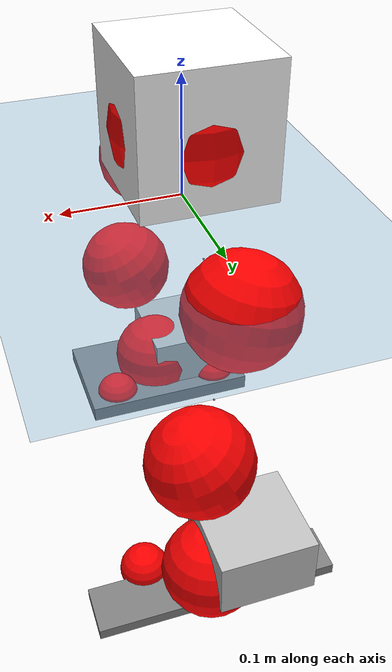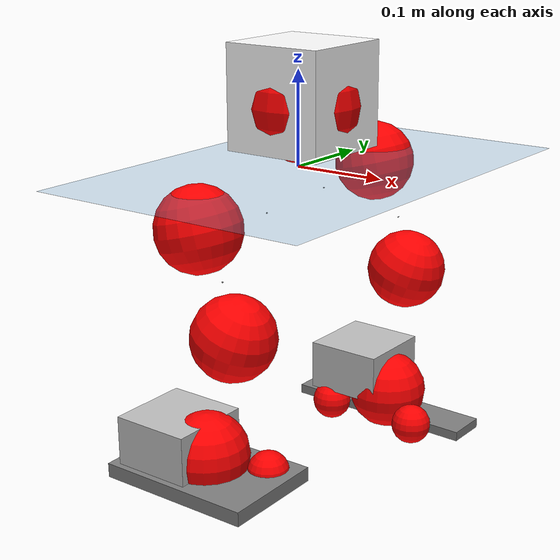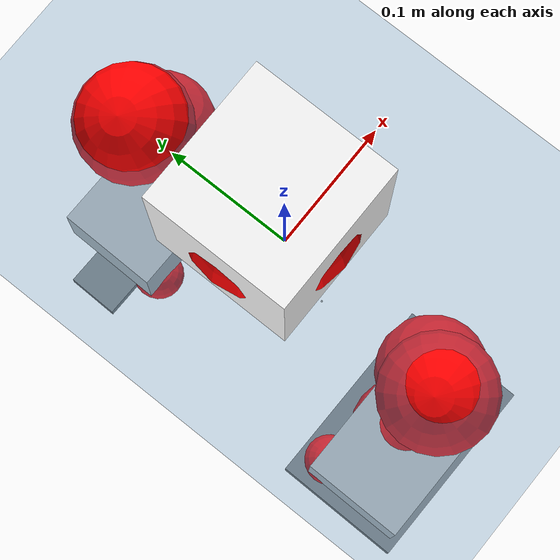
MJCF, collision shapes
<mujoco model="pi_12dof_release_v1">
  <compiler angle="radian" assetdir="assets" balanceinertia="true" inertiafromgeom="false"/>

  <option timestep="0.005" density="1.2" viscosity="2e-05"/>

  <size nkey="1"/>

  <visual>
    <quality shadowsize="8192"/>
    <map shadowclip="0.5"/>
  </visual>

  <default>
    <default class="/">
      <joint armature="0.01" damping="0.01" frictionloss="0.01"/>
      <geom contype="0" conaffinity="0" group="1" solref="-1000 -80"/>
      <site size="0.01 0.005 0.005" group="5"/>
      <general forcelimited="true" biastype="affine" gainprm="20" biasprm="0 -20 -0.5"/>
      <default class="foot">
        <geom size="0.0845 0.036 0.005" type="box" condim="6" group="4" priority="1" friction="0.9 0.2 0.2" solimp="0.015 1 0.005"/>
      </default>
      <default class="reward_collision_sphere">
        <geom group="5" rgba="1 0 0 1"/>
      </default>
    </default>
  </default>

  <asset>
    <texture type="skybox" colorspace="auto" name="//unnamed_texture_0" builtin="gradient" rgb1="0.95 0.95 0.95" rgb2="0.95 0.95 0.95" width="100" height="600"/>
    <texture type="2d" colorspace="auto" name="texplane" builtin="checker" rgb1="0.345 0.575 0.748" rgb2="0.345 0.575 0.748" markrgb="1 1 1" width="512" height="512"/>
    <material name="MatPlane" class="/" texture="texplane" texuniform="true" texrepeat="2 2" specular="0.9"/>
    <mesh name="baselink_1" class="/" file="baselink_1.STL"/>
    <mesh name="r_hip_pitch_link" class="/" file="r_hip_pitch_link.STL"/>
    <mesh name="r_hip_roll_link" class="/" file="r_hip_roll_link.STL"/>
    <mesh name="r_thigh_link" class="/" file="r_thigh_link.STL"/>
    <mesh name="r_calf_link" class="/" file="r_calf_link.STL"/>
    <mesh name="r_ankle_pitch_link" class="/" file="r_ankle_pitch_link.STL"/>
    <mesh name="r_ankle_roll_link" class="/" file="r_ankle_roll_link.STL"/>
    <mesh name="l_hip_pitch_link" class="/" file="l_hip_pitch_link.STL"/>
    <mesh name="l_hip_roll_link" class="/" file="l_hip_roll_link.STL"/>
    <mesh name="l_thigh_link" class="/" file="l_thigh_link.STL"/>
    <mesh name="l_calf_link" class="/" file="l_calf_link.STL"/>
    <mesh name="l_ankle_pitch_link" class="/" file="l_ankle_pitch_link.STL"/>
    <mesh name="l_ankle_roll_link" class="/" file="l_ankle_roll_link.STL"/>
  </asset>

  <worldbody>
    <geom name="floor" class="/" size="100 100 0.125" type="plane" group="0" material="MatPlane"/>
    <light name="toplight_shadow" class="/" pos="0 0 5" dir="0.0990148 0.0990148 -0.990148" type="directional" ambient="0.04 0.04 0.04" diffuse="0.55 0.55 0.55" specular="0.12 0.12 0.12"/>
    <light name="toplight_fill" class="/" pos="0 0 5" dir="0.0990148 0.0990148 -0.990148" type="directional" castshadow="false" ambient="0.04 0.04 0.04" diffuse="0.3 0.3 0.3" specular="0.08 0.08 0.08"/>
    <body name="trunk" pos="-0.00127457 0.00994474 -0.000463248" quat="1 3.14448e-05 0.000191285 3.4265e-05">
      <inertial pos="-0.00179737 0.0105782 0.0368023" quat="0.672033 0.0727672 -0.012606 0.736829" mass="2.94327" diaginertia="0.00397237 0.095442 0.00256891"/>
      <joint name="//unnamed_joint_0" type="free"/>
      <geom name="//unnamed_geom_1" class="/" type="mesh" density="0" rgba="1 1 1 1" mesh="baselink_1"/>
      <geom name="//unnamed_geom_2" class="/" size="0.0551156 0.0551156 0.0551156" pos="0 0 0.0726496" type="box" rgba="1 1 1 1"/>
      <geom name="//unnamed_geom_3" class="reward_collision_sphere" size="0.0606272" pos="0 0 0.0635684"/>
      <site name="imu" class="/" pos="-0.0480428 -0.0361698 0.049645" size="0.0110231"/>
      <camera name="track" class="/" pos="0 -3.15836 0" quat="0.707107 0.707107 0 0" mode="trackcom"/>
      <camera name="ego_camera" class="/" pos="0.0614727 0 0.163462" quat="-0.5 -0.5 0.5 0.5"/>
      <body name="r_hip_pitch_link" pos="-0.00863732 -0.0509329 -0.0418353" quat="0.991675 0.00134105 -0.128725 -0.00291963">
        <inertial pos="0.0024835 -0.0899574 -0.00662313" quat="-0.016487 0.705239 -0.0308435 0.708106" mass="0.550884" diaginertia="3.96331e-05 0.00105469 4.95516e-05"/>
        <joint name="r_hip_pitch_joint" class="/" pos="0 0 0" axis="0.0233663 -0.999701 0.00721749" stiffness="0.00313184" range="-1.72004 1.38995" armature="0.0115401" damping="0.0253809" frictionloss="0.0127025"/>
        <geom name="//unnamed_geom_4" class="/" type="mesh" density="0" rgba="0.75294 0.75294 0.75294 1" mesh="r_hip_pitch_link"/>
        <geom name="//unnamed_geom_5" class="/" size="0.000551156 0.000551156 0.000551156" type="box" rgba="0.75294 0.75294 0.75294 1"/>
        <body name="r_hip_roll_link" pos="0.000765904 -0.10392 0.0065442" quat="0.99999 0.00323005 0.00307375 0.000659522">
          <inertial pos="-0.0104458 -0.00728104 -0.0594084" quat="0.725261 -0.029655 -0.0687942 0.684386" mass="0.519377" diaginertia="0.000123105 0.00277087 8.34335e-05"/>
          <joint name="r_hip_roll_joint" class="/" pos="0 0 0" axis="-0.999138 -0.0382057 0.0162344" stiffness="0.00689631" range="-0.136208 0.28402" armature="0.0160637" damping="0.0922938" frictionloss="0.0110264"/>
          <geom name="//unnamed_geom_6" class="/" type="mesh" density="0" rgba="0.75294 0.75294 0.75294 1" mesh="r_hip_roll_link"/>
          <geom name="//unnamed_geom_7" class="/" size="0.000551156 0.000551156 0.000551156" type="box" rgba="0.75294 0.75294 0.75294 1"/>
          <geom name="//unnamed_geom_8" class="reward_collision_sphere" size="0.0440925"/>
          <body name="r_thigh_link" pos="0.00383568 0.0124475 -0.0559746" quat="0.999994 0.00207068 0.0025095 -0.000893586">
            <inertial pos="-0.00821794 0.00188137 -0.0294671" quat="0.739101 0.67357 -0.00573174 0.000252517" mass="0.155431" diaginertia="5.26703e-05 0.000791449 4.2374e-05"/>
            <joint name="r_thigh_joint" class="/" pos="0 0 0" axis="0.00999644 0.00295438 -0.999946" stiffness="0.0369862" range="-0.123756 0.590456" armature="0.0140759" damping="0.00302611" frictionloss="0.0116698"/>
            <geom name="//unnamed_geom_9" class="/" type="mesh" density="0" rgba="0.75294 0.75294 0.75294 1" mesh="r_thigh_link"/>
            <geom name="//unnamed_geom_10" class="/" size="0.000551156 0.000551156 0.000551156" type="box" rgba="0.75294 0.75294 0.75294 1"/>
            <body name="r_calf_link" pos="-0.00343749 0.00194069 -0.0572106" quat="0.947531 4.45169e-05 0.319661 -0.000900255">
              <inertial pos="0.00441617 -0.00450358 -0.0661673" quat="0.999986 -0.00291258 0.000497159 0.00437696" mass="1.24091" diaginertia="0.00135995 0.0404516 9.35141e-05"/>
              <joint name="r_calf_joint" class="/" pos="0 0 0" axis="-0.00434247 -0.999356 0.0356173" stiffness="0.0315406" range="-1.93939 0.514136" armature="0.0127563" damping="0.0150855" frictionloss="0.00749585"/>
              <geom name="//unnamed_geom_11" class="/" type="mesh" density="0" rgba="0.75294 0.75294 0.75294 1" mesh="r_calf_link"/>
              <geom name="//unnamed_geom_12" class="/" size="0.000551156 0.000551156 0.000551156" type="box" rgba="0.75294 0.75294 0.75294 1"/>
              <geom name="//unnamed_geom_13" class="reward_collision_sphere" size="0.0440925"/>
              <body name="r_ankle_pitch_link" pos="-0.0128208 -0.0139548 -0.134575" quat="0.98051 0.00196814 -0.196455 -0.00107301">
                <inertial pos="0.010171 0.0194993 -0.000180998" quat="-0.028853 0.708202 -0.0244943 0.704995" mass="0.18089" diaginertia="9.8156e-05 0.00189847 6.80175e-05"/>
                <joint name="r_ankle_pitch_joint" class="/" pos="0 0 0" axis="0.00804347 -0.997951 0.0634738" range="-1.42221 0.248444" armature="0.0111198" damping="0" frictionloss="0.0136348"/>
                <geom name="//unnamed_geom_14" class="/" type="mesh" density="0" rgba="0.75294 0.75294 0.75294 1" mesh="r_ankle_pitch_link"/>
                <geom name="//unnamed_geom_15" class="/" size="0.0429902 0.0440925 0.0275578" type="box" rgba="0.75294 0.75294 0.75294 1"/>
                <body name="r_ankle_roll_link" pos="0.0746329 0.00441354 0.00829343" quat="0.999984 0.0049463 -0.00252761 -0.000964897">
                  <inertial pos="-0.0243416 0.00220699 -0.0218796" quat="0.57625 0.431973 0.399604 0.567144" mass="0.690042" diaginertia="0.0004039 0.0102599 0.00016582"/>
                  <joint name="r_ankle_roll_joint" class="/" pos="0 0 0" axis="-0.999994 0.00253855 -0.00242147" range="0.119574 0.176143" armature="0.0117394" damping="0.0166762" frictionloss="0.0146533"/>
                  <geom name="//unnamed_geom_16" class="/" type="mesh" density="0" rgba="0.75294 0.75294 0.75294 1" mesh="r_ankle_roll_link"/>
                  <geom name="//unnamed_geom_17" class="/" type="mesh" rgba="0.75294 0.75294 0.75294 1" mesh="r_ankle_roll_link"/>
                  <geom name="right_foot" class="foot" size="0.0861745 0.0557761 0.00767781" pos="-0.0418014 0 -0.0399573"/>
                  <geom name="//unnamed_geom_19" class="reward_collision_sphere" size="0.0440925" pos="-0.0409818 0 -0.0181624"/>
                  <geom name="//unnamed_geom_20" class="reward_collision_sphere" size="0.0220462" pos="0.0122945 0.0315836 -0.0363248"/>
                  <geom name="//unnamed_geom_21" class="reward_collision_sphere" size="0.0220462" pos="-0.0983563 0.0315836 -0.0363248"/>
                  <site name="right_foot" class="foot" pos="-0.0418014 0 -0.0399573" size="0.0110231"/>
                </body>
              </body>
            </body>
          </body>
        </body>
      </body>
      <body name="l_hip_pitch_link" pos="-0.000522435 0.0382193 -0.0319716" quat="0.992273 -0.00151307 -0.124057 -0.00147965">
        <inertial pos="0.00226255 0.0965813 -0.00721968" quat="-0.0273024 0.714538 0.0216039 0.698729" mass="0.463969" diaginertia="4.49154e-05 0.000966886 5.70703e-05"/>
        <joint name="l_hip_pitch_joint" class="/" pos="0 0 0" axis="-0.00893194 0.999905 0.0104689" range="-1.22833 1.74437" armature="0.0113695" damping="0.056845" frictionloss="0.00631757"/>
        <geom name="//unnamed_geom_22" class="/" type="mesh" density="0" rgba="0.75294 0.75294 0.75294 1" mesh="l_hip_pitch_link"/>
        <geom name="//unnamed_geom_23" class="/" size="0.000551156 0.000551156 0.000551156" type="box" rgba="0.75294 0.75294 0.75294 1"/>
        <body name="l_hip_roll_link" pos="0.00790268 0.0907849 0.0128145" quat="0.999999 0.000242138 -0.000313644 -0.00122623">
          <inertial pos="0.000915202 0.000941368 -0.0422881" quat="0.70708 -0.0606455 -0.0451202 0.703082" mass="0.40137" diaginertia="0.000120617 0.00238968 7.50503e-05"/>
          <joint name="l_hip_roll_joint" class="/" pos="0 0 0" axis="-0.998692 0.0310774 -0.0405975" stiffness="0.00929434" range="-0.244496 0.0836156" armature="0.0051727" damping="0.000513952" frictionloss="0.00837007"/>
          <geom name="//unnamed_geom_24" class="/" type="mesh" density="0" rgba="0.75294 0.75294 0.75294 1" mesh="l_hip_roll_link"/>
          <geom name="//unnamed_geom_25" class="/" size="0.000551156 0.000551156 0.000551156" type="box" rgba="0.75294 0.75294 0.75294 1"/>
          <geom name="//unnamed_geom_26" class="reward_collision_sphere" size="0.0440925"/>
          <body name="l_thigh_link" pos="0.00753423 0.0142513 -0.0687249" quat="0.999999 0.00126515 -0.000592983 -0.000464522">
            <inertial pos="0.000789812 -0.00241954 -0.0419857" quat="0.675077 0.737746 -0.000476183 0.000955323" mass="0.1232" diaginertia="3.58249e-05 0.00083847 3.27148e-05"/>
            <joint name="l_thigh_joint" class="/" pos="0 0 0" axis="0.00461501 -0.00108179 -0.999989" stiffness="0.00292908" range="-0.630559 0.311772" armature="0.0152331" damping="0" frictionloss="0.0104561"/>
            <geom name="//unnamed_geom_27" class="/" type="mesh" density="0" rgba="0.75294 0.75294 0.75294 1" mesh="l_thigh_link"/>
            <geom name="//unnamed_geom_28" class="/" size="0.000551156 0.000551156 0.000551156" type="box" rgba="0.75294 0.75294 0.75294 1"/>
            <body name="l_calf_link" pos="-0.00424041 0.00215223 -0.0605216" quat="0.94678 0.00274594 0.321842 -0.0041259">
              <inertial pos="-0.00309547 -0.00498604 -0.0549881" quat="0.999927 -0.0117171 0.00155967 0.00234589" mass="0.995187" diaginertia="0.00104084 0.0293518 8.27282e-05"/>
              <joint name="l_calf_joint" class="/" pos="0 0 0" axis="-0.0265544 0.999133 0.0320718" stiffness="0.0215141" range="-0.705609 1.75647" armature="0.00921332" damping="0" frictionloss="0.00854458"/>
              <geom name="//unnamed_geom_29" class="/" type="mesh" density="0" rgba="0.75294 0.75294 0.75294 1" mesh="l_calf_link"/>
              <geom name="//unnamed_geom_30" class="/" size="0.000551156 0.000551156 0.000551156" type="box" rgba="0.75294 0.75294 0.75294 1"/>
              <geom name="//unnamed_geom_31" class="reward_collision_sphere" size="0.0440925"/>
              <body name="l_ankle_pitch_link" pos="0.00178524 -0.00894274 -0.132626" quat="0.980632 0.00475033 -0.195791 0.00210242">
                <inertial pos="0.00238566 0.0108938 -0.00755892" quat="-0.0135716 0.71147 0.00227492 0.702581" mass="0.25916" diaginertia="0.000124052 0.0024053 8.06401e-05"/>
                <joint name="l_ankle_pitch_joint" class="/" pos="0 0 0" axis="0.00408021 0.999767 -0.0211851" stiffness="0.0228957" range="-0.303051 1.14226" armature="0.0105803" damping="0" frictionloss="0.010808"/>
                <geom name="//unnamed_geom_32" class="/" type="mesh" density="0" rgba="0.75294 0.75294 0.75294 1" mesh="l_ankle_pitch_link"/>
                <geom name="//unnamed_geom_33" class="/" size="0.0429902 0.0440925 0.0275578" type="box" rgba="0.75294 0.75294 0.75294 1"/>
                <body name="l_ankle_roll_link" pos="0.0766568 -0.0027908 -0.007074" quat="0.999996 0.000315403 0.000726393 -0.00287367">
                  <inertial pos="-0.0340991 -0.00158604 -0.0095284" quat="0.562135 0.445069 0.414342 0.56057" mass="0.70442" diaginertia="0.000359563 0.0107501 0.000172139"/>
                  <joint name="l_ankle_roll_joint" class="/" pos="0 0 0" axis="-0.997605 -0.048646 0.0491801" stiffness="0.0266488" range="-0.427096 0.344662" armature="0.00463821" damping="0" frictionloss="0.0171699"/>
                  <geom name="//unnamed_geom_34" class="/" type="mesh" density="0" rgba="0.75294 0.75294 0.75294 1" mesh="l_ankle_roll_link"/>
                  <geom name="//unnamed_geom_35" class="/" type="mesh" rgba="0.75294 0.75294 0.75294 1" mesh="l_ankle_roll_link"/>
                  <geom name="left_foot" class="foot" size="0.108851 0.0225209 0.00524506" pos="-0.0418014 0 -0.0399573"/>
                  <geom name="//unnamed_geom_37" class="reward_collision_sphere" size="0.0440925" pos="-0.0409818 0 -0.0181624"/>
                  <geom name="//unnamed_geom_38" class="reward_collision_sphere" size="0.0220462" pos="0.0122945 -0.0315836 -0.0363248"/>
                  <geom name="//unnamed_geom_39" class="reward_collision_sphere" size="0.0220462" pos="-0.0983563 -0.0315836 -0.0363248"/>
                  <site name="left_foot" class="foot" pos="-0.0418014 0 -0.0399573" size="0.0110231"/>
                </body>
              </body>
            </body>
          </body>
        </body>
      </body>
    </body>
  </worldbody>

  <contact>
    <pair class="/" geom1="floor" geom2="right_foot" name="//unnamed_contact_1"/>
    <pair class="/" geom1="floor" geom2="left_foot" name="//unnamed_contact_0"/>
  </contact>

  <actuator>
    <general name="r_hip_pitch_joint" class="/" joint="r_hip_pitch_joint" forcerange="-26.0668 26.0668" gainprm="26.208" biasprm="0 -26.208 -0.613756"/>
    <general name="r_hip_roll_joint" class="/" joint="r_hip_roll_joint" forcerange="-24.056 24.056" gainprm="26.208" biasprm="0 -26.208 -0.613756"/>
    <general name="r_thigh_joint" class="/" joint="r_thigh_joint" forcerange="-15.7114 15.7114" gainprm="26.208" biasprm="0 -26.208 -0.613756"/>
    <general name="r_calf_joint" class="/" joint="r_calf_joint" forcerange="-33.2261 33.2261" gainprm="26.208" biasprm="0 -26.208 -0.613756"/>
    <general name="r_ankle_pitch_joint" class="/" joint="r_ankle_pitch_joint" forcerange="-12.164 12.164" gainprm="26.208" biasprm="0 -26.208 -0.613756"/>
    <general name="r_ankle_roll_joint" class="/" joint="r_ankle_roll_joint" forcerange="-12.0848 12.0848" gainprm="26.208" biasprm="0 -26.208 -0.613756"/>
    <general name="l_hip_pitch_joint" class="/" joint="l_hip_pitch_joint" forcerange="-10.6995 10.6995" gainprm="26.208" biasprm="0 -26.208 -0.613756"/>
    <general name="l_hip_roll_joint" class="/" joint="l_hip_roll_joint" forcerange="-30.6034 30.6034" gainprm="26.208" biasprm="0 -26.208 -0.613756"/>
    <general name="l_thigh_joint" class="/" joint="l_thigh_joint" forcerange="-26.5196 26.5196" gainprm="26.208" biasprm="0 -26.208 -0.613756"/>
    <general name="l_calf_joint" class="/" joint="l_calf_joint" forcerange="-12.1501 12.1501" gainprm="26.208" biasprm="0 -26.208 -0.613756"/>
    <general name="l_ankle_pitch_joint" class="/" joint="l_ankle_pitch_joint" forcerange="-12.1179 12.1179" gainprm="26.208" biasprm="0 -26.208 -0.613756"/>
    <general name="l_ankle_roll_joint" class="/" joint="l_ankle_roll_joint" forcerange="-15.8634 15.8634" gainprm="26.208" biasprm="0 -26.208 -0.613756"/>
  </actuator>

  <sensor>
    <gyro site="imu" name="imu_angular_velocity"/>
    <velocimeter site="imu" name="imu_linear_velocity"/>
    <framelinvel objtype="site" objname="left_foot" name="left_foot_global_linear_velocity"/>
    <framelinvel objtype="site" objname="right_foot" name="right_foot_global_linear_velocity"/>
  </sensor>

  <keyframe>
    <key name="home" qpos="0 0 0.291 1 0 0 0 0.4 0 0 -0.8 0.4 0 -0.4 0 0 0.8 -0.4 0"/>
  </keyframe>
</mujoco>
